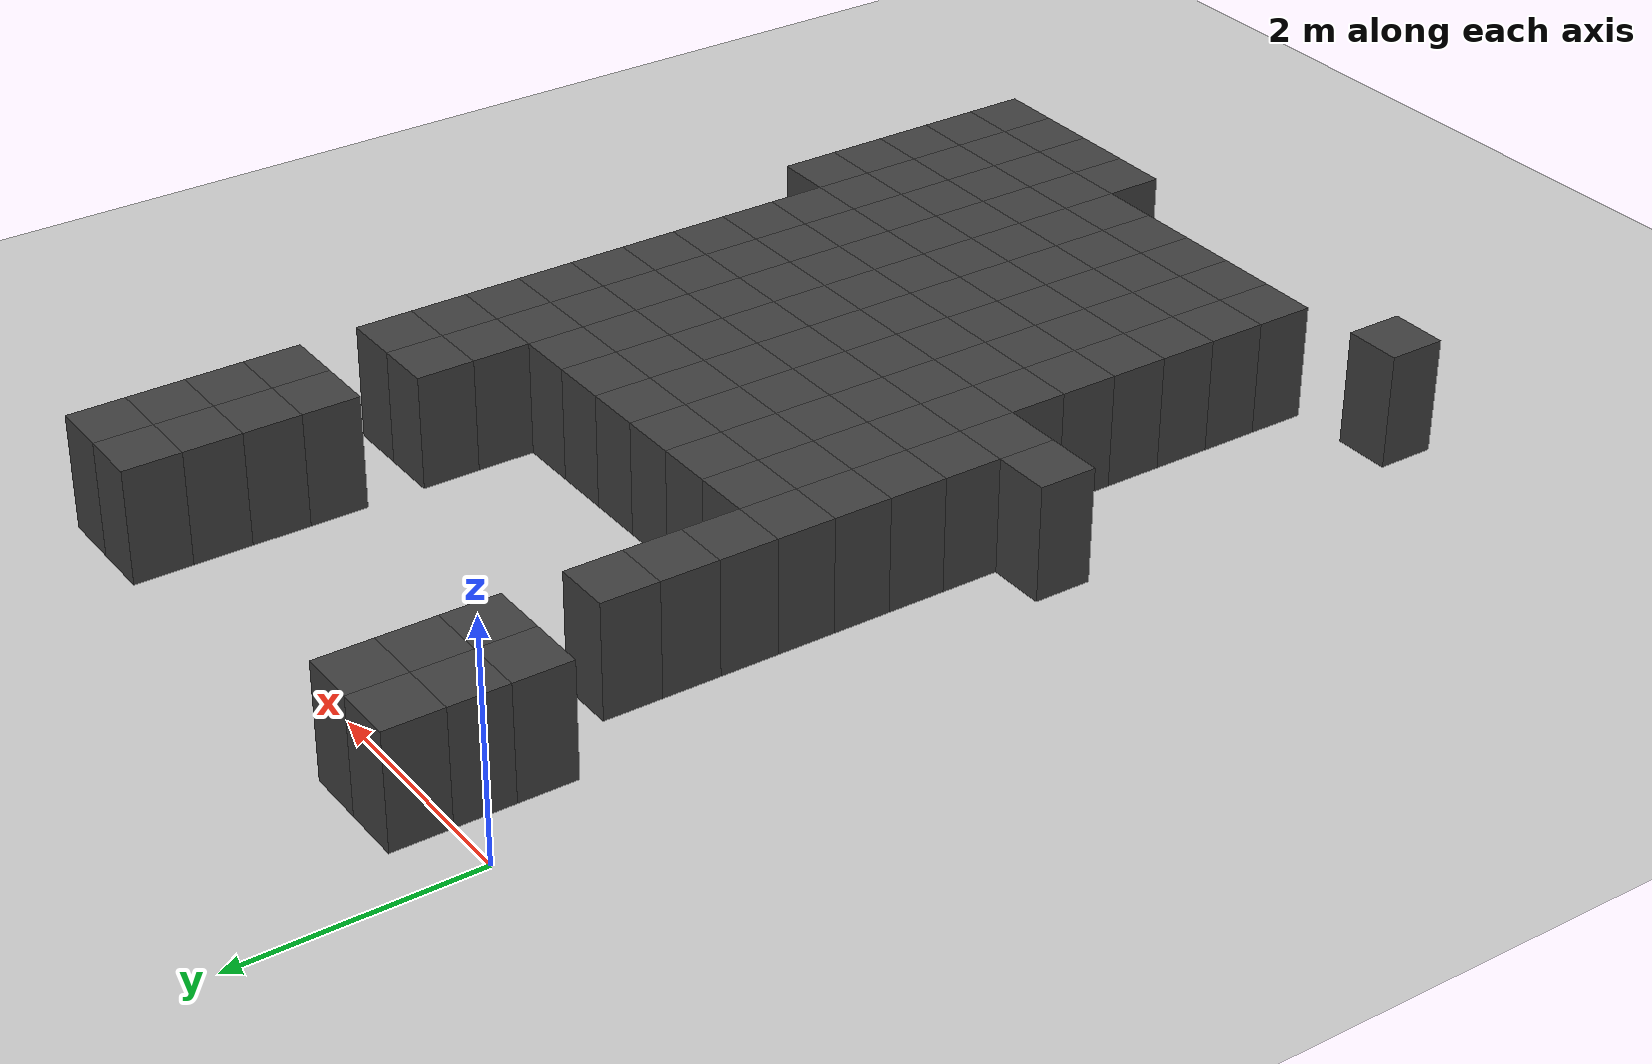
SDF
<sdf version="1.7">
 <world name="map_14802">
  <model name="ground_plane">
   <static>true</static>
   <link name="link">
    <collision name="collision">
     <geometry><plane><normal>0 0 1</normal><size>200 200</size></plane></geometry>
    </collision>
    <visual name="visual">
     <geometry><plane><normal>0 0 1</normal><size>200 200</size></plane></geometry>
     <material><ambient>0.8 0.8 0.8 1</ambient><diffuse>0.8 0.8 0.8 1</diffuse></material>
    </visual>
   </link>
  </model>
  <model name="maze_environment">
   <static>true</static>
   <link name="wall_884">
    <pose>0.750 0.250 0.500 0 0 0</pose>
    <collision name="col"><geometry><box><size>0.5 0.5 1.0</size></box></geometry></collision>
    <visual name="vis">
     <geometry><box><size>0.5 0.5 1.0</size></box></geometry>
     <material><ambient>0.15 0.15 0.15 1</ambient><diffuse>0.25 0.25 0.25 1</diffuse></material>
    </visual>
   </link>
   <link name="wall_885">
    <pose>1.250 0.250 0.500 0 0 0</pose>
    <collision name="col"><geometry><box><size>0.5 0.5 1.0</size></box></geometry></collision>
    <visual name="vis">
     <geometry><box><size>0.5 0.5 1.0</size></box></geometry>
     <material><ambient>0.15 0.15 0.15 1</ambient><diffuse>0.25 0.25 0.25 1</diffuse></material>
    </visual>
   </link>
   <link name="wall_886">
    <pose>4.750 0.250 0.500 0 0 0</pose>
    <collision name="col"><geometry><box><size>0.5 0.5 1.0</size></box></geometry></collision>
    <visual name="vis">
     <geometry><box><size>0.5 0.5 1.0</size></box></geometry>
     <material><ambient>0.15 0.15 0.15 1</ambient><diffuse>0.25 0.25 0.25 1</diffuse></material>
    </visual>
   </link>
   <link name="wall_887">
    <pose>5.250 0.250 0.500 0 0 0</pose>
    <collision name="col"><geometry><box><size>0.5 0.5 1.0</size></box></geometry></collision>
    <visual name="vis">
     <geometry><box><size>0.5 0.5 1.0</size></box></geometry>
     <material><ambient>0.15 0.15 0.15 1</ambient><diffuse>0.25 0.25 0.25 1</diffuse></material>
    </visual>
   </link>
   <link name="wall_922">
    <pose>0.750 -0.250 0.500 0 0 0</pose>
    <collision name="col"><geometry><box><size>0.5 0.5 1.0</size></box></geometry></collision>
    <visual name="vis">
     <geometry><box><size>0.5 0.5 1.0</size></box></geometry>
     <material><ambient>0.15 0.15 0.15 1</ambient><diffuse>0.25 0.25 0.25 1</diffuse></material>
    </visual>
   </link>
   <link name="wall_923">
    <pose>1.250 -0.250 0.500 0 0 0</pose>
    <collision name="col"><geometry><box><size>0.5 0.5 1.0</size></box></geometry></collision>
    <visual name="vis">
     <geometry><box><size>0.5 0.5 1.0</size></box></geometry>
     <material><ambient>0.15 0.15 0.15 1</ambient><diffuse>0.25 0.25 0.25 1</diffuse></material>
    </visual>
   </link>
   <link name="wall_924">
    <pose>4.750 -0.250 0.500 0 0 0</pose>
    <collision name="col"><geometry><box><size>0.5 0.5 1.0</size></box></geometry></collision>
    <visual name="vis">
     <geometry><box><size>0.5 0.5 1.0</size></box></geometry>
     <material><ambient>0.15 0.15 0.15 1</ambient><diffuse>0.25 0.25 0.25 1</diffuse></material>
    </visual>
   </link>
   <link name="wall_925">
    <pose>5.250 -0.250 0.500 0 0 0</pose>
    <collision name="col"><geometry><box><size>0.5 0.5 1.0</size></box></geometry></collision>
    <visual name="vis">
     <geometry><box><size>0.5 0.5 1.0</size></box></geometry>
     <material><ambient>0.15 0.15 0.15 1</ambient><diffuse>0.25 0.25 0.25 1</diffuse></material>
    </visual>
   </link>
   <link name="wall_960">
    <pose>0.750 -0.750 0.500 0 0 0</pose>
    <collision name="col"><geometry><box><size>0.5 0.5 1.0</size></box></geometry></collision>
    <visual name="vis">
     <geometry><box><size>0.5 0.5 1.0</size></box></geometry>
     <material><ambient>0.15 0.15 0.15 1</ambient><diffuse>0.25 0.25 0.25 1</diffuse></material>
    </visual>
   </link>
   <link name="wall_961">
    <pose>1.250 -0.750 0.500 0 0 0</pose>
    <collision name="col"><geometry><box><size>0.5 0.5 1.0</size></box></geometry></collision>
    <visual name="vis">
     <geometry><box><size>0.5 0.5 1.0</size></box></geometry>
     <material><ambient>0.15 0.15 0.15 1</ambient><diffuse>0.25 0.25 0.25 1</diffuse></material>
    </visual>
   </link>
   <link name="wall_962">
    <pose>4.750 -0.750 0.500 0 0 0</pose>
    <collision name="col"><geometry><box><size>0.5 0.5 1.0</size></box></geometry></collision>
    <visual name="vis">
     <geometry><box><size>0.5 0.5 1.0</size></box></geometry>
     <material><ambient>0.15 0.15 0.15 1</ambient><diffuse>0.25 0.25 0.25 1</diffuse></material>
    </visual>
   </link>
   <link name="wall_963">
    <pose>5.250 -0.750 0.500 0 0 0</pose>
    <collision name="col"><geometry><box><size>0.5 0.5 1.0</size></box></geometry></collision>
    <visual name="vis">
     <geometry><box><size>0.5 0.5 1.0</size></box></geometry>
     <material><ambient>0.15 0.15 0.15 1</ambient><diffuse>0.25 0.25 0.25 1</diffuse></material>
    </visual>
   </link>
   <link name="wall_986">
    <pose>4.750 -1.250 0.500 0 0 0</pose>
    <collision name="col"><geometry><box><size>0.5 0.5 1.0</size></box></geometry></collision>
    <visual name="vis">
     <geometry><box><size>0.5 0.5 1.0</size></box></geometry>
     <material><ambient>0.15 0.15 0.15 1</ambient><diffuse>0.25 0.25 0.25 1</diffuse></material>
    </visual>
   </link>
   <link name="wall_987">
    <pose>5.250 -1.250 0.500 0 0 0</pose>
    <collision name="col"><geometry><box><size>0.5 0.5 1.0</size></box></geometry></collision>
    <visual name="vis">
     <geometry><box><size>0.5 0.5 1.0</size></box></geometry>
     <material><ambient>0.15 0.15 0.15 1</ambient><diffuse>0.25 0.25 0.25 1</diffuse></material>
    </visual>
   </link>
   <link name="wall_1010">
    <pose>1.250 -1.750 0.500 0 0 0</pose>
    <collision name="col"><geometry><box><size>0.5 0.5 1.0</size></box></geometry></collision>
    <visual name="vis">
     <geometry><box><size>0.5 0.5 1.0</size></box></geometry>
     <material><ambient>0.15 0.15 0.15 1</ambient><diffuse>0.25 0.25 0.25 1</diffuse></material>
    </visual>
   </link>
   <link name="wall_1032">
    <pose>1.250 -2.250 0.500 0 0 0</pose>
    <collision name="col"><geometry><box><size>0.5 0.5 1.0</size></box></geometry></collision>
    <visual name="vis">
     <geometry><box><size>0.5 0.5 1.0</size></box></geometry>
     <material><ambient>0.15 0.15 0.15 1</ambient><diffuse>0.25 0.25 0.25 1</diffuse></material>
    </visual>
   </link>
   <link name="wall_1033">
    <pose>4.750 -2.250 0.500 0 0 0</pose>
    <collision name="col"><geometry><box><size>0.5 0.5 1.0</size></box></geometry></collision>
    <visual name="vis">
     <geometry><box><size>0.5 0.5 1.0</size></box></geometry>
     <material><ambient>0.15 0.15 0.15 1</ambient><diffuse>0.25 0.25 0.25 1</diffuse></material>
    </visual>
   </link>
   <link name="wall_1034">
    <pose>5.250 -2.250 0.500 0 0 0</pose>
    <collision name="col"><geometry><box><size>0.5 0.5 1.0</size></box></geometry></collision>
    <visual name="vis">
     <geometry><box><size>0.5 0.5 1.0</size></box></geometry>
     <material><ambient>0.15 0.15 0.15 1</ambient><diffuse>0.25 0.25 0.25 1</diffuse></material>
    </visual>
   </link>
   <link name="wall_1057">
    <pose>1.250 -2.750 0.500 0 0 0</pose>
    <collision name="col"><geometry><box><size>0.5 0.5 1.0</size></box></geometry></collision>
    <visual name="vis">
     <geometry><box><size>0.5 0.5 1.0</size></box></geometry>
     <material><ambient>0.15 0.15 0.15 1</ambient><diffuse>0.25 0.25 0.25 1</diffuse></material>
    </visual>
   </link>
   <link name="wall_1058">
    <pose>4.750 -2.750 0.500 0 0 0</pose>
    <collision name="col"><geometry><box><size>0.5 0.5 1.0</size></box></geometry></collision>
    <visual name="vis">
     <geometry><box><size>0.5 0.5 1.0</size></box></geometry>
     <material><ambient>0.15 0.15 0.15 1</ambient><diffuse>0.25 0.25 0.25 1</diffuse></material>
    </visual>
   </link>
   <link name="wall_1059">
    <pose>5.250 -2.750 0.500 0 0 0</pose>
    <collision name="col"><geometry><box><size>0.5 0.5 1.0</size></box></geometry></collision>
    <visual name="vis">
     <geometry><box><size>0.5 0.5 1.0</size></box></geometry>
     <material><ambient>0.15 0.15 0.15 1</ambient><diffuse>0.25 0.25 0.25 1</diffuse></material>
    </visual>
   </link>
   <link name="wall_1079">
    <pose>1.250 -3.250 0.500 0 0 0</pose>
    <collision name="col"><geometry><box><size>0.5 0.5 1.0</size></box></geometry></collision>
    <visual name="vis">
     <geometry><box><size>0.5 0.5 1.0</size></box></geometry>
     <material><ambient>0.15 0.15 0.15 1</ambient><diffuse>0.25 0.25 0.25 1</diffuse></material>
    </visual>
   </link>
   <link name="wall_1080">
    <pose>1.750 -3.250 0.500 0 0 0</pose>
    <collision name="col"><geometry><box><size>0.5 0.5 1.0</size></box></geometry></collision>
    <visual name="vis">
     <geometry><box><size>0.5 0.5 1.0</size></box></geometry>
     <material><ambient>0.15 0.15 0.15 1</ambient><diffuse>0.25 0.25 0.25 1</diffuse></material>
    </visual>
   </link>
   <link name="wall_1081">
    <pose>2.250 -3.250 0.500 0 0 0</pose>
    <collision name="col"><geometry><box><size>0.5 0.5 1.0</size></box></geometry></collision>
    <visual name="vis">
     <geometry><box><size>0.5 0.5 1.0</size></box></geometry>
     <material><ambient>0.15 0.15 0.15 1</ambient><diffuse>0.25 0.25 0.25 1</diffuse></material>
    </visual>
   </link>
   <link name="wall_1082">
    <pose>2.750 -3.250 0.500 0 0 0</pose>
    <collision name="col"><geometry><box><size>0.5 0.5 1.0</size></box></geometry></collision>
    <visual name="vis">
     <geometry><box><size>0.5 0.5 1.0</size></box></geometry>
     <material><ambient>0.15 0.15 0.15 1</ambient><diffuse>0.25 0.25 0.25 1</diffuse></material>
    </visual>
   </link>
   <link name="wall_1083">
    <pose>3.250 -3.250 0.500 0 0 0</pose>
    <collision name="col"><geometry><box><size>0.5 0.5 1.0</size></box></geometry></collision>
    <visual name="vis">
     <geometry><box><size>0.5 0.5 1.0</size></box></geometry>
     <material><ambient>0.15 0.15 0.15 1</ambient><diffuse>0.25 0.25 0.25 1</diffuse></material>
    </visual>
   </link>
   <link name="wall_1084">
    <pose>3.750 -3.250 0.500 0 0 0</pose>
    <collision name="col"><geometry><box><size>0.5 0.5 1.0</size></box></geometry></collision>
    <visual name="vis">
     <geometry><box><size>0.5 0.5 1.0</size></box></geometry>
     <material><ambient>0.15 0.15 0.15 1</ambient><diffuse>0.25 0.25 0.25 1</diffuse></material>
    </visual>
   </link>
   <link name="wall_1085">
    <pose>4.250 -3.250 0.500 0 0 0</pose>
    <collision name="col"><geometry><box><size>0.5 0.5 1.0</size></box></geometry></collision>
    <visual name="vis">
     <geometry><box><size>0.5 0.5 1.0</size></box></geometry>
     <material><ambient>0.15 0.15 0.15 1</ambient><diffuse>0.25 0.25 0.25 1</diffuse></material>
    </visual>
   </link>
   <link name="wall_1086">
    <pose>4.750 -3.250 0.500 0 0 0</pose>
    <collision name="col"><geometry><box><size>0.5 0.5 1.0</size></box></geometry></collision>
    <visual name="vis">
     <geometry><box><size>0.5 0.5 1.0</size></box></geometry>
     <material><ambient>0.15 0.15 0.15 1</ambient><diffuse>0.25 0.25 0.25 1</diffuse></material>
    </visual>
   </link>
   <link name="wall_1087">
    <pose>5.250 -3.250 0.500 0 0 0</pose>
    <collision name="col"><geometry><box><size>0.5 0.5 1.0</size></box></geometry></collision>
    <visual name="vis">
     <geometry><box><size>0.5 0.5 1.0</size></box></geometry>
     <material><ambient>0.15 0.15 0.15 1</ambient><diffuse>0.25 0.25 0.25 1</diffuse></material>
    </visual>
   </link>
   <link name="wall_1103">
    <pose>1.250 -3.750 0.500 0 0 0</pose>
    <collision name="col"><geometry><box><size>0.5 0.5 1.0</size></box></geometry></collision>
    <visual name="vis">
     <geometry><box><size>0.5 0.5 1.0</size></box></geometry>
     <material><ambient>0.15 0.15 0.15 1</ambient><diffuse>0.25 0.25 0.25 1</diffuse></material>
    </visual>
   </link>
   <link name="wall_1104">
    <pose>1.750 -3.750 0.500 0 0 0</pose>
    <collision name="col"><geometry><box><size>0.5 0.5 1.0</size></box></geometry></collision>
    <visual name="vis">
     <geometry><box><size>0.5 0.5 1.0</size></box></geometry>
     <material><ambient>0.15 0.15 0.15 1</ambient><diffuse>0.25 0.25 0.25 1</diffuse></material>
    </visual>
   </link>
   <link name="wall_1105">
    <pose>2.250 -3.750 0.500 0 0 0</pose>
    <collision name="col"><geometry><box><size>0.5 0.5 1.0</size></box></geometry></collision>
    <visual name="vis">
     <geometry><box><size>0.5 0.5 1.0</size></box></geometry>
     <material><ambient>0.15 0.15 0.15 1</ambient><diffuse>0.25 0.25 0.25 1</diffuse></material>
    </visual>
   </link>
   <link name="wall_1106">
    <pose>2.750 -3.750 0.500 0 0 0</pose>
    <collision name="col"><geometry><box><size>0.5 0.5 1.0</size></box></geometry></collision>
    <visual name="vis">
     <geometry><box><size>0.5 0.5 1.0</size></box></geometry>
     <material><ambient>0.15 0.15 0.15 1</ambient><diffuse>0.25 0.25 0.25 1</diffuse></material>
    </visual>
   </link>
   <link name="wall_1107">
    <pose>3.250 -3.750 0.500 0 0 0</pose>
    <collision name="col"><geometry><box><size>0.5 0.5 1.0</size></box></geometry></collision>
    <visual name="vis">
     <geometry><box><size>0.5 0.5 1.0</size></box></geometry>
     <material><ambient>0.15 0.15 0.15 1</ambient><diffuse>0.25 0.25 0.25 1</diffuse></material>
    </visual>
   </link>
   <link name="wall_1108">
    <pose>3.750 -3.750 0.500 0 0 0</pose>
    <collision name="col"><geometry><box><size>0.5 0.5 1.0</size></box></geometry></collision>
    <visual name="vis">
     <geometry><box><size>0.5 0.5 1.0</size></box></geometry>
     <material><ambient>0.15 0.15 0.15 1</ambient><diffuse>0.25 0.25 0.25 1</diffuse></material>
    </visual>
   </link>
   <link name="wall_1109">
    <pose>4.250 -3.750 0.500 0 0 0</pose>
    <collision name="col"><geometry><box><size>0.5 0.5 1.0</size></box></geometry></collision>
    <visual name="vis">
     <geometry><box><size>0.5 0.5 1.0</size></box></geometry>
     <material><ambient>0.15 0.15 0.15 1</ambient><diffuse>0.25 0.25 0.25 1</diffuse></material>
    </visual>
   </link>
   <link name="wall_1110">
    <pose>4.750 -3.750 0.500 0 0 0</pose>
    <collision name="col"><geometry><box><size>0.5 0.5 1.0</size></box></geometry></collision>
    <visual name="vis">
     <geometry><box><size>0.5 0.5 1.0</size></box></geometry>
     <material><ambient>0.15 0.15 0.15 1</ambient><diffuse>0.25 0.25 0.25 1</diffuse></material>
    </visual>
   </link>
   <link name="wall_1111">
    <pose>5.250 -3.750 0.500 0 0 0</pose>
    <collision name="col"><geometry><box><size>0.5 0.5 1.0</size></box></geometry></collision>
    <visual name="vis">
     <geometry><box><size>0.5 0.5 1.0</size></box></geometry>
     <material><ambient>0.15 0.15 0.15 1</ambient><diffuse>0.25 0.25 0.25 1</diffuse></material>
    </visual>
   </link>
   <link name="wall_1127">
    <pose>1.250 -4.250 0.500 0 0 0</pose>
    <collision name="col"><geometry><box><size>0.5 0.5 1.0</size></box></geometry></collision>
    <visual name="vis">
     <geometry><box><size>0.5 0.5 1.0</size></box></geometry>
     <material><ambient>0.15 0.15 0.15 1</ambient><diffuse>0.25 0.25 0.25 1</diffuse></material>
    </visual>
   </link>
   <link name="wall_1128">
    <pose>1.750 -4.250 0.500 0 0 0</pose>
    <collision name="col"><geometry><box><size>0.5 0.5 1.0</size></box></geometry></collision>
    <visual name="vis">
     <geometry><box><size>0.5 0.5 1.0</size></box></geometry>
     <material><ambient>0.15 0.15 0.15 1</ambient><diffuse>0.25 0.25 0.25 1</diffuse></material>
    </visual>
   </link>
   <link name="wall_1129">
    <pose>2.250 -4.250 0.500 0 0 0</pose>
    <collision name="col"><geometry><box><size>0.5 0.5 1.0</size></box></geometry></collision>
    <visual name="vis">
     <geometry><box><size>0.5 0.5 1.0</size></box></geometry>
     <material><ambient>0.15 0.15 0.15 1</ambient><diffuse>0.25 0.25 0.25 1</diffuse></material>
    </visual>
   </link>
   <link name="wall_1130">
    <pose>2.750 -4.250 0.500 0 0 0</pose>
    <collision name="col"><geometry><box><size>0.5 0.5 1.0</size></box></geometry></collision>
    <visual name="vis">
     <geometry><box><size>0.5 0.5 1.0</size></box></geometry>
     <material><ambient>0.15 0.15 0.15 1</ambient><diffuse>0.25 0.25 0.25 1</diffuse></material>
    </visual>
   </link>
   <link name="wall_1131">
    <pose>3.250 -4.250 0.500 0 0 0</pose>
    <collision name="col"><geometry><box><size>0.5 0.5 1.0</size></box></geometry></collision>
    <visual name="vis">
     <geometry><box><size>0.5 0.5 1.0</size></box></geometry>
     <material><ambient>0.15 0.15 0.15 1</ambient><diffuse>0.25 0.25 0.25 1</diffuse></material>
    </visual>
   </link>
   <link name="wall_1132">
    <pose>3.750 -4.250 0.500 0 0 0</pose>
    <collision name="col"><geometry><box><size>0.5 0.5 1.0</size></box></geometry></collision>
    <visual name="vis">
     <geometry><box><size>0.5 0.5 1.0</size></box></geometry>
     <material><ambient>0.15 0.15 0.15 1</ambient><diffuse>0.25 0.25 0.25 1</diffuse></material>
    </visual>
   </link>
   <link name="wall_1133">
    <pose>4.250 -4.250 0.500 0 0 0</pose>
    <collision name="col"><geometry><box><size>0.5 0.5 1.0</size></box></geometry></collision>
    <visual name="vis">
     <geometry><box><size>0.5 0.5 1.0</size></box></geometry>
     <material><ambient>0.15 0.15 0.15 1</ambient><diffuse>0.25 0.25 0.25 1</diffuse></material>
    </visual>
   </link>
   <link name="wall_1134">
    <pose>4.750 -4.250 0.500 0 0 0</pose>
    <collision name="col"><geometry><box><size>0.5 0.5 1.0</size></box></geometry></collision>
    <visual name="vis">
     <geometry><box><size>0.5 0.5 1.0</size></box></geometry>
     <material><ambient>0.15 0.15 0.15 1</ambient><diffuse>0.25 0.25 0.25 1</diffuse></material>
    </visual>
   </link>
   <link name="wall_1135">
    <pose>5.250 -4.250 0.500 0 0 0</pose>
    <collision name="col"><geometry><box><size>0.5 0.5 1.0</size></box></geometry></collision>
    <visual name="vis">
     <geometry><box><size>0.5 0.5 1.0</size></box></geometry>
     <material><ambient>0.15 0.15 0.15 1</ambient><diffuse>0.25 0.25 0.25 1</diffuse></material>
    </visual>
   </link>
   <link name="wall_1144">
    <pose>1.250 -4.750 0.500 0 0 0</pose>
    <collision name="col"><geometry><box><size>0.5 0.5 1.0</size></box></geometry></collision>
    <visual name="vis">
     <geometry><box><size>0.5 0.5 1.0</size></box></geometry>
     <material><ambient>0.15 0.15 0.15 1</ambient><diffuse>0.25 0.25 0.25 1</diffuse></material>
    </visual>
   </link>
   <link name="wall_1145">
    <pose>1.750 -4.750 0.500 0 0 0</pose>
    <collision name="col"><geometry><box><size>0.5 0.5 1.0</size></box></geometry></collision>
    <visual name="vis">
     <geometry><box><size>0.5 0.5 1.0</size></box></geometry>
     <material><ambient>0.15 0.15 0.15 1</ambient><diffuse>0.25 0.25 0.25 1</diffuse></material>
    </visual>
   </link>
   <link name="wall_1146">
    <pose>2.250 -4.750 0.500 0 0 0</pose>
    <collision name="col"><geometry><box><size>0.5 0.5 1.0</size></box></geometry></collision>
    <visual name="vis">
     <geometry><box><size>0.5 0.5 1.0</size></box></geometry>
     <material><ambient>0.15 0.15 0.15 1</ambient><diffuse>0.25 0.25 0.25 1</diffuse></material>
    </visual>
   </link>
   <link name="wall_1147">
    <pose>2.750 -4.750 0.500 0 0 0</pose>
    <collision name="col"><geometry><box><size>0.5 0.5 1.0</size></box></geometry></collision>
    <visual name="vis">
     <geometry><box><size>0.5 0.5 1.0</size></box></geometry>
     <material><ambient>0.15 0.15 0.15 1</ambient><diffuse>0.25 0.25 0.25 1</diffuse></material>
    </visual>
   </link>
   <link name="wall_1148">
    <pose>3.250 -4.750 0.500 0 0 0</pose>
    <collision name="col"><geometry><box><size>0.5 0.5 1.0</size></box></geometry></collision>
    <visual name="vis">
     <geometry><box><size>0.5 0.5 1.0</size></box></geometry>
     <material><ambient>0.15 0.15 0.15 1</ambient><diffuse>0.25 0.25 0.25 1</diffuse></material>
    </visual>
   </link>
   <link name="wall_1149">
    <pose>3.750 -4.750 0.500 0 0 0</pose>
    <collision name="col"><geometry><box><size>0.5 0.5 1.0</size></box></geometry></collision>
    <visual name="vis">
     <geometry><box><size>0.5 0.5 1.0</size></box></geometry>
     <material><ambient>0.15 0.15 0.15 1</ambient><diffuse>0.25 0.25 0.25 1</diffuse></material>
    </visual>
   </link>
   <link name="wall_1150">
    <pose>4.250 -4.750 0.500 0 0 0</pose>
    <collision name="col"><geometry><box><size>0.5 0.5 1.0</size></box></geometry></collision>
    <visual name="vis">
     <geometry><box><size>0.5 0.5 1.0</size></box></geometry>
     <material><ambient>0.15 0.15 0.15 1</ambient><diffuse>0.25 0.25 0.25 1</diffuse></material>
    </visual>
   </link>
   <link name="wall_1151">
    <pose>4.750 -4.750 0.500 0 0 0</pose>
    <collision name="col"><geometry><box><size>0.5 0.5 1.0</size></box></geometry></collision>
    <visual name="vis">
     <geometry><box><size>0.5 0.5 1.0</size></box></geometry>
     <material><ambient>0.15 0.15 0.15 1</ambient><diffuse>0.25 0.25 0.25 1</diffuse></material>
    </visual>
   </link>
   <link name="wall_1152">
    <pose>5.250 -4.750 0.500 0 0 0</pose>
    <collision name="col"><geometry><box><size>0.5 0.5 1.0</size></box></geometry></collision>
    <visual name="vis">
     <geometry><box><size>0.5 0.5 1.0</size></box></geometry>
     <material><ambient>0.15 0.15 0.15 1</ambient><diffuse>0.25 0.25 0.25 1</diffuse></material>
    </visual>
   </link>
   <link name="wall_1171">
    <pose>0.750 -5.250 0.500 0 0 0</pose>
    <collision name="col"><geometry><box><size>0.5 0.5 1.0</size></box></geometry></collision>
    <visual name="vis">
     <geometry><box><size>0.5 0.5 1.0</size></box></geometry>
     <material><ambient>0.15 0.15 0.15 1</ambient><diffuse>0.25 0.25 0.25 1</diffuse></material>
    </visual>
   </link>
   <link name="wall_1172">
    <pose>1.250 -5.250 0.500 0 0 0</pose>
    <collision name="col"><geometry><box><size>0.5 0.5 1.0</size></box></geometry></collision>
    <visual name="vis">
     <geometry><box><size>0.5 0.5 1.0</size></box></geometry>
     <material><ambient>0.15 0.15 0.15 1</ambient><diffuse>0.25 0.25 0.25 1</diffuse></material>
    </visual>
   </link>
   <link name="wall_1173">
    <pose>1.750 -5.250 0.500 0 0 0</pose>
    <collision name="col"><geometry><box><size>0.5 0.5 1.0</size></box></geometry></collision>
    <visual name="vis">
     <geometry><box><size>0.5 0.5 1.0</size></box></geometry>
     <material><ambient>0.15 0.15 0.15 1</ambient><diffuse>0.25 0.25 0.25 1</diffuse></material>
    </visual>
   </link>
   <link name="wall_1174">
    <pose>2.250 -5.250 0.500 0 0 0</pose>
    <collision name="col"><geometry><box><size>0.5 0.5 1.0</size></box></geometry></collision>
    <visual name="vis">
     <geometry><box><size>0.5 0.5 1.0</size></box></geometry>
     <material><ambient>0.15 0.15 0.15 1</ambient><diffuse>0.25 0.25 0.25 1</diffuse></material>
    </visual>
   </link>
   <link name="wall_1175">
    <pose>2.750 -5.250 0.500 0 0 0</pose>
    <collision name="col"><geometry><box><size>0.5 0.5 1.0</size></box></geometry></collision>
    <visual name="vis">
     <geometry><box><size>0.5 0.5 1.0</size></box></geometry>
     <material><ambient>0.15 0.15 0.15 1</ambient><diffuse>0.25 0.25 0.25 1</diffuse></material>
    </visual>
   </link>
   <link name="wall_1176">
    <pose>3.250 -5.250 0.500 0 0 0</pose>
    <collision name="col"><geometry><box><size>0.5 0.5 1.0</size></box></geometry></collision>
    <visual name="vis">
     <geometry><box><size>0.5 0.5 1.0</size></box></geometry>
     <material><ambient>0.15 0.15 0.15 1</ambient><diffuse>0.25 0.25 0.25 1</diffuse></material>
    </visual>
   </link>
   <link name="wall_1177">
    <pose>3.750 -5.250 0.500 0 0 0</pose>
    <collision name="col"><geometry><box><size>0.5 0.5 1.0</size></box></geometry></collision>
    <visual name="vis">
     <geometry><box><size>0.5 0.5 1.0</size></box></geometry>
     <material><ambient>0.15 0.15 0.15 1</ambient><diffuse>0.25 0.25 0.25 1</diffuse></material>
    </visual>
   </link>
   <link name="wall_1178">
    <pose>4.250 -5.250 0.500 0 0 0</pose>
    <collision name="col"><geometry><box><size>0.5 0.5 1.0</size></box></geometry></collision>
    <visual name="vis">
     <geometry><box><size>0.5 0.5 1.0</size></box></geometry>
     <material><ambient>0.15 0.15 0.15 1</ambient><diffuse>0.25 0.25 0.25 1</diffuse></material>
    </visual>
   </link>
   <link name="wall_1179">
    <pose>4.750 -5.250 0.500 0 0 0</pose>
    <collision name="col"><geometry><box><size>0.5 0.5 1.0</size></box></geometry></collision>
    <visual name="vis">
     <geometry><box><size>0.5 0.5 1.0</size></box></geometry>
     <material><ambient>0.15 0.15 0.15 1</ambient><diffuse>0.25 0.25 0.25 1</diffuse></material>
    </visual>
   </link>
   <link name="wall_1180">
    <pose>5.250 -5.250 0.500 0 0 0</pose>
    <collision name="col"><geometry><box><size>0.5 0.5 1.0</size></box></geometry></collision>
    <visual name="vis">
     <geometry><box><size>0.5 0.5 1.0</size></box></geometry>
     <material><ambient>0.15 0.15 0.15 1</ambient><diffuse>0.25 0.25 0.25 1</diffuse></material>
    </visual>
   </link>
   <link name="wall_1194">
    <pose>1.750 -5.750 0.500 0 0 0</pose>
    <collision name="col"><geometry><box><size>0.5 0.5 1.0</size></box></geometry></collision>
    <visual name="vis">
     <geometry><box><size>0.5 0.5 1.0</size></box></geometry>
     <material><ambient>0.15 0.15 0.15 1</ambient><diffuse>0.25 0.25 0.25 1</diffuse></material>
    </visual>
   </link>
   <link name="wall_1195">
    <pose>2.250 -5.750 0.500 0 0 0</pose>
    <collision name="col"><geometry><box><size>0.5 0.5 1.0</size></box></geometry></collision>
    <visual name="vis">
     <geometry><box><size>0.5 0.5 1.0</size></box></geometry>
     <material><ambient>0.15 0.15 0.15 1</ambient><diffuse>0.25 0.25 0.25 1</diffuse></material>
    </visual>
   </link>
   <link name="wall_1196">
    <pose>2.750 -5.750 0.500 0 0 0</pose>
    <collision name="col"><geometry><box><size>0.5 0.5 1.0</size></box></geometry></collision>
    <visual name="vis">
     <geometry><box><size>0.5 0.5 1.0</size></box></geometry>
     <material><ambient>0.15 0.15 0.15 1</ambient><diffuse>0.25 0.25 0.25 1</diffuse></material>
    </visual>
   </link>
   <link name="wall_1197">
    <pose>3.250 -5.750 0.500 0 0 0</pose>
    <collision name="col"><geometry><box><size>0.5 0.5 1.0</size></box></geometry></collision>
    <visual name="vis">
     <geometry><box><size>0.5 0.5 1.0</size></box></geometry>
     <material><ambient>0.15 0.15 0.15 1</ambient><diffuse>0.25 0.25 0.25 1</diffuse></material>
    </visual>
   </link>
   <link name="wall_1198">
    <pose>3.750 -5.750 0.500 0 0 0</pose>
    <collision name="col"><geometry><box><size>0.5 0.5 1.0</size></box></geometry></collision>
    <visual name="vis">
     <geometry><box><size>0.5 0.5 1.0</size></box></geometry>
     <material><ambient>0.15 0.15 0.15 1</ambient><diffuse>0.25 0.25 0.25 1</diffuse></material>
    </visual>
   </link>
   <link name="wall_1199">
    <pose>4.250 -5.750 0.500 0 0 0</pose>
    <collision name="col"><geometry><box><size>0.5 0.5 1.0</size></box></geometry></collision>
    <visual name="vis">
     <geometry><box><size>0.5 0.5 1.0</size></box></geometry>
     <material><ambient>0.15 0.15 0.15 1</ambient><diffuse>0.25 0.25 0.25 1</diffuse></material>
    </visual>
   </link>
   <link name="wall_1200">
    <pose>4.750 -5.750 0.500 0 0 0</pose>
    <collision name="col"><geometry><box><size>0.5 0.5 1.0</size></box></geometry></collision>
    <visual name="vis">
     <geometry><box><size>0.5 0.5 1.0</size></box></geometry>
     <material><ambient>0.15 0.15 0.15 1</ambient><diffuse>0.25 0.25 0.25 1</diffuse></material>
    </visual>
   </link>
   <link name="wall_1201">
    <pose>5.250 -5.750 0.500 0 0 0</pose>
    <collision name="col"><geometry><box><size>0.5 0.5 1.0</size></box></geometry></collision>
    <visual name="vis">
     <geometry><box><size>0.5 0.5 1.0</size></box></geometry>
     <material><ambient>0.15 0.15 0.15 1</ambient><diffuse>0.25 0.25 0.25 1</diffuse></material>
    </visual>
   </link>
   <link name="wall_1227">
    <pose>1.750 -6.250 0.500 0 0 0</pose>
    <collision name="col"><geometry><box><size>0.5 0.5 1.0</size></box></geometry></collision>
    <visual name="vis">
     <geometry><box><size>0.5 0.5 1.0</size></box></geometry>
     <material><ambient>0.15 0.15 0.15 1</ambient><diffuse>0.25 0.25 0.25 1</diffuse></material>
    </visual>
   </link>
   <link name="wall_1228">
    <pose>2.250 -6.250 0.500 0 0 0</pose>
    <collision name="col"><geometry><box><size>0.5 0.5 1.0</size></box></geometry></collision>
    <visual name="vis">
     <geometry><box><size>0.5 0.5 1.0</size></box></geometry>
     <material><ambient>0.15 0.15 0.15 1</ambient><diffuse>0.25 0.25 0.25 1</diffuse></material>
    </visual>
   </link>
   <link name="wall_1229">
    <pose>2.750 -6.250 0.500 0 0 0</pose>
    <collision name="col"><geometry><box><size>0.5 0.5 1.0</size></box></geometry></collision>
    <visual name="vis">
     <geometry><box><size>0.5 0.5 1.0</size></box></geometry>
     <material><ambient>0.15 0.15 0.15 1</ambient><diffuse>0.25 0.25 0.25 1</diffuse></material>
    </visual>
   </link>
   <link name="wall_1230">
    <pose>3.250 -6.250 0.500 0 0 0</pose>
    <collision name="col"><geometry><box><size>0.5 0.5 1.0</size></box></geometry></collision>
    <visual name="vis">
     <geometry><box><size>0.5 0.5 1.0</size></box></geometry>
     <material><ambient>0.15 0.15 0.15 1</ambient><diffuse>0.25 0.25 0.25 1</diffuse></material>
    </visual>
   </link>
   <link name="wall_1231">
    <pose>3.750 -6.250 0.500 0 0 0</pose>
    <collision name="col"><geometry><box><size>0.5 0.5 1.0</size></box></geometry></collision>
    <visual name="vis">
     <geometry><box><size>0.5 0.5 1.0</size></box></geometry>
     <material><ambient>0.15 0.15 0.15 1</ambient><diffuse>0.25 0.25 0.25 1</diffuse></material>
    </visual>
   </link>
   <link name="wall_1232">
    <pose>4.250 -6.250 0.500 0 0 0</pose>
    <collision name="col"><geometry><box><size>0.5 0.5 1.0</size></box></geometry></collision>
    <visual name="vis">
     <geometry><box><size>0.5 0.5 1.0</size></box></geometry>
     <material><ambient>0.15 0.15 0.15 1</ambient><diffuse>0.25 0.25 0.25 1</diffuse></material>
    </visual>
   </link>
   <link name="wall_1233">
    <pose>4.750 -6.250 0.500 0 0 0</pose>
    <collision name="col"><geometry><box><size>0.5 0.5 1.0</size></box></geometry></collision>
    <visual name="vis">
     <geometry><box><size>0.5 0.5 1.0</size></box></geometry>
     <material><ambient>0.15 0.15 0.15 1</ambient><diffuse>0.25 0.25 0.25 1</diffuse></material>
    </visual>
   </link>
   <link name="wall_1234">
    <pose>5.250 -6.250 0.500 0 0 0</pose>
    <collision name="col"><geometry><box><size>0.5 0.5 1.0</size></box></geometry></collision>
    <visual name="vis">
     <geometry><box><size>0.5 0.5 1.0</size></box></geometry>
     <material><ambient>0.15 0.15 0.15 1</ambient><diffuse>0.25 0.25 0.25 1</diffuse></material>
    </visual>
   </link>
   <link name="wall_1260">
    <pose>1.750 -6.750 0.500 0 0 0</pose>
    <collision name="col"><geometry><box><size>0.5 0.5 1.0</size></box></geometry></collision>
    <visual name="vis">
     <geometry><box><size>0.5 0.5 1.0</size></box></geometry>
     <material><ambient>0.15 0.15 0.15 1</ambient><diffuse>0.25 0.25 0.25 1</diffuse></material>
    </visual>
   </link>
   <link name="wall_1261">
    <pose>2.250 -6.750 0.500 0 0 0</pose>
    <collision name="col"><geometry><box><size>0.5 0.5 1.0</size></box></geometry></collision>
    <visual name="vis">
     <geometry><box><size>0.5 0.5 1.0</size></box></geometry>
     <material><ambient>0.15 0.15 0.15 1</ambient><diffuse>0.25 0.25 0.25 1</diffuse></material>
    </visual>
   </link>
   <link name="wall_1262">
    <pose>2.750 -6.750 0.500 0 0 0</pose>
    <collision name="col"><geometry><box><size>0.5 0.5 1.0</size></box></geometry></collision>
    <visual name="vis">
     <geometry><box><size>0.5 0.5 1.0</size></box></geometry>
     <material><ambient>0.15 0.15 0.15 1</ambient><diffuse>0.25 0.25 0.25 1</diffuse></material>
    </visual>
   </link>
   <link name="wall_1263">
    <pose>3.250 -6.750 0.500 0 0 0</pose>
    <collision name="col"><geometry><box><size>0.5 0.5 1.0</size></box></geometry></collision>
    <visual name="vis">
     <geometry><box><size>0.5 0.5 1.0</size></box></geometry>
     <material><ambient>0.15 0.15 0.15 1</ambient><diffuse>0.25 0.25 0.25 1</diffuse></material>
    </visual>
   </link>
   <link name="wall_1264">
    <pose>3.750 -6.750 0.500 0 0 0</pose>
    <collision name="col"><geometry><box><size>0.5 0.5 1.0</size></box></geometry></collision>
    <visual name="vis">
     <geometry><box><size>0.5 0.5 1.0</size></box></geometry>
     <material><ambient>0.15 0.15 0.15 1</ambient><diffuse>0.25 0.25 0.25 1</diffuse></material>
    </visual>
   </link>
   <link name="wall_1265">
    <pose>4.250 -6.750 0.500 0 0 0</pose>
    <collision name="col"><geometry><box><size>0.5 0.5 1.0</size></box></geometry></collision>
    <visual name="vis">
     <geometry><box><size>0.5 0.5 1.0</size></box></geometry>
     <material><ambient>0.15 0.15 0.15 1</ambient><diffuse>0.25 0.25 0.25 1</diffuse></material>
    </visual>
   </link>
   <link name="wall_1266">
    <pose>4.750 -6.750 0.500 0 0 0</pose>
    <collision name="col"><geometry><box><size>0.5 0.5 1.0</size></box></geometry></collision>
    <visual name="vis">
     <geometry><box><size>0.5 0.5 1.0</size></box></geometry>
     <material><ambient>0.15 0.15 0.15 1</ambient><diffuse>0.25 0.25 0.25 1</diffuse></material>
    </visual>
   </link>
   <link name="wall_1267">
    <pose>5.250 -6.750 0.500 0 0 0</pose>
    <collision name="col"><geometry><box><size>0.5 0.5 1.0</size></box></geometry></collision>
    <visual name="vis">
     <geometry><box><size>0.5 0.5 1.0</size></box></geometry>
     <material><ambient>0.15 0.15 0.15 1</ambient><diffuse>0.25 0.25 0.25 1</diffuse></material>
    </visual>
   </link>
   <link name="wall_1268">
    <pose>5.750 -6.750 0.500 0 0 0</pose>
    <collision name="col"><geometry><box><size>0.5 0.5 1.0</size></box></geometry></collision>
    <visual name="vis">
     <geometry><box><size>0.5 0.5 1.0</size></box></geometry>
     <material><ambient>0.15 0.15 0.15 1</ambient><diffuse>0.25 0.25 0.25 1</diffuse></material>
    </visual>
   </link>
   <link name="wall_1295">
    <pose>1.750 -7.250 0.500 0 0 0</pose>
    <collision name="col"><geometry><box><size>0.5 0.5 1.0</size></box></geometry></collision>
    <visual name="vis">
     <geometry><box><size>0.5 0.5 1.0</size></box></geometry>
     <material><ambient>0.15 0.15 0.15 1</ambient><diffuse>0.25 0.25 0.25 1</diffuse></material>
    </visual>
   </link>
   <link name="wall_1296">
    <pose>2.250 -7.250 0.500 0 0 0</pose>
    <collision name="col"><geometry><box><size>0.5 0.5 1.0</size></box></geometry></collision>
    <visual name="vis">
     <geometry><box><size>0.5 0.5 1.0</size></box></geometry>
     <material><ambient>0.15 0.15 0.15 1</ambient><diffuse>0.25 0.25 0.25 1</diffuse></material>
    </visual>
   </link>
   <link name="wall_1297">
    <pose>2.750 -7.250 0.500 0 0 0</pose>
    <collision name="col"><geometry><box><size>0.5 0.5 1.0</size></box></geometry></collision>
    <visual name="vis">
     <geometry><box><size>0.5 0.5 1.0</size></box></geometry>
     <material><ambient>0.15 0.15 0.15 1</ambient><diffuse>0.25 0.25 0.25 1</diffuse></material>
    </visual>
   </link>
   <link name="wall_1298">
    <pose>3.250 -7.250 0.500 0 0 0</pose>
    <collision name="col"><geometry><box><size>0.5 0.5 1.0</size></box></geometry></collision>
    <visual name="vis">
     <geometry><box><size>0.5 0.5 1.0</size></box></geometry>
     <material><ambient>0.15 0.15 0.15 1</ambient><diffuse>0.25 0.25 0.25 1</diffuse></material>
    </visual>
   </link>
   <link name="wall_1299">
    <pose>3.750 -7.250 0.500 0 0 0</pose>
    <collision name="col"><geometry><box><size>0.5 0.5 1.0</size></box></geometry></collision>
    <visual name="vis">
     <geometry><box><size>0.5 0.5 1.0</size></box></geometry>
     <material><ambient>0.15 0.15 0.15 1</ambient><diffuse>0.25 0.25 0.25 1</diffuse></material>
    </visual>
   </link>
   <link name="wall_1300">
    <pose>4.250 -7.250 0.500 0 0 0</pose>
    <collision name="col"><geometry><box><size>0.5 0.5 1.0</size></box></geometry></collision>
    <visual name="vis">
     <geometry><box><size>0.5 0.5 1.0</size></box></geometry>
     <material><ambient>0.15 0.15 0.15 1</ambient><diffuse>0.25 0.25 0.25 1</diffuse></material>
    </visual>
   </link>
   <link name="wall_1301">
    <pose>4.750 -7.250 0.500 0 0 0</pose>
    <collision name="col"><geometry><box><size>0.5 0.5 1.0</size></box></geometry></collision>
    <visual name="vis">
     <geometry><box><size>0.5 0.5 1.0</size></box></geometry>
     <material><ambient>0.15 0.15 0.15 1</ambient><diffuse>0.25 0.25 0.25 1</diffuse></material>
    </visual>
   </link>
   <link name="wall_1302">
    <pose>5.250 -7.250 0.500 0 0 0</pose>
    <collision name="col"><geometry><box><size>0.5 0.5 1.0</size></box></geometry></collision>
    <visual name="vis">
     <geometry><box><size>0.5 0.5 1.0</size></box></geometry>
     <material><ambient>0.15 0.15 0.15 1</ambient><diffuse>0.25 0.25 0.25 1</diffuse></material>
    </visual>
   </link>
   <link name="wall_1303">
    <pose>5.750 -7.250 0.500 0 0 0</pose>
    <collision name="col"><geometry><box><size>0.5 0.5 1.0</size></box></geometry></collision>
    <visual name="vis">
     <geometry><box><size>0.5 0.5 1.0</size></box></geometry>
     <material><ambient>0.15 0.15 0.15 1</ambient><diffuse>0.25 0.25 0.25 1</diffuse></material>
    </visual>
   </link>
   <link name="wall_1330">
    <pose>1.750 -7.750 0.500 0 0 0</pose>
    <collision name="col"><geometry><box><size>0.5 0.5 1.0</size></box></geometry></collision>
    <visual name="vis">
     <geometry><box><size>0.5 0.5 1.0</size></box></geometry>
     <material><ambient>0.15 0.15 0.15 1</ambient><diffuse>0.25 0.25 0.25 1</diffuse></material>
    </visual>
   </link>
   <link name="wall_1331">
    <pose>2.250 -7.750 0.500 0 0 0</pose>
    <collision name="col"><geometry><box><size>0.5 0.5 1.0</size></box></geometry></collision>
    <visual name="vis">
     <geometry><box><size>0.5 0.5 1.0</size></box></geometry>
     <material><ambient>0.15 0.15 0.15 1</ambient><diffuse>0.25 0.25 0.25 1</diffuse></material>
    </visual>
   </link>
   <link name="wall_1332">
    <pose>2.750 -7.750 0.500 0 0 0</pose>
    <collision name="col"><geometry><box><size>0.5 0.5 1.0</size></box></geometry></collision>
    <visual name="vis">
     <geometry><box><size>0.5 0.5 1.0</size></box></geometry>
     <material><ambient>0.15 0.15 0.15 1</ambient><diffuse>0.25 0.25 0.25 1</diffuse></material>
    </visual>
   </link>
   <link name="wall_1333">
    <pose>3.250 -7.750 0.500 0 0 0</pose>
    <collision name="col"><geometry><box><size>0.5 0.5 1.0</size></box></geometry></collision>
    <visual name="vis">
     <geometry><box><size>0.5 0.5 1.0</size></box></geometry>
     <material><ambient>0.15 0.15 0.15 1</ambient><diffuse>0.25 0.25 0.25 1</diffuse></material>
    </visual>
   </link>
   <link name="wall_1334">
    <pose>3.750 -7.750 0.500 0 0 0</pose>
    <collision name="col"><geometry><box><size>0.5 0.5 1.0</size></box></geometry></collision>
    <visual name="vis">
     <geometry><box><size>0.5 0.5 1.0</size></box></geometry>
     <material><ambient>0.15 0.15 0.15 1</ambient><diffuse>0.25 0.25 0.25 1</diffuse></material>
    </visual>
   </link>
   <link name="wall_1335">
    <pose>4.250 -7.750 0.500 0 0 0</pose>
    <collision name="col"><geometry><box><size>0.5 0.5 1.0</size></box></geometry></collision>
    <visual name="vis">
     <geometry><box><size>0.5 0.5 1.0</size></box></geometry>
     <material><ambient>0.15 0.15 0.15 1</ambient><diffuse>0.25 0.25 0.25 1</diffuse></material>
    </visual>
   </link>
   <link name="wall_1336">
    <pose>4.750 -7.750 0.500 0 0 0</pose>
    <collision name="col"><geometry><box><size>0.5 0.5 1.0</size></box></geometry></collision>
    <visual name="vis">
     <geometry><box><size>0.5 0.5 1.0</size></box></geometry>
     <material><ambient>0.15 0.15 0.15 1</ambient><diffuse>0.25 0.25 0.25 1</diffuse></material>
    </visual>
   </link>
   <link name="wall_1337">
    <pose>5.250 -7.750 0.500 0 0 0</pose>
    <collision name="col"><geometry><box><size>0.5 0.5 1.0</size></box></geometry></collision>
    <visual name="vis">
     <geometry><box><size>0.5 0.5 1.0</size></box></geometry>
     <material><ambient>0.15 0.15 0.15 1</ambient><diffuse>0.25 0.25 0.25 1</diffuse></material>
    </visual>
   </link>
   <link name="wall_1338">
    <pose>5.750 -7.750 0.500 0 0 0</pose>
    <collision name="col"><geometry><box><size>0.5 0.5 1.0</size></box></geometry></collision>
    <visual name="vis">
     <geometry><box><size>0.5 0.5 1.0</size></box></geometry>
     <material><ambient>0.15 0.15 0.15 1</ambient><diffuse>0.25 0.25 0.25 1</diffuse></material>
    </visual>
   </link>
   <link name="wall_1365">
    <pose>1.750 -8.250 0.500 0 0 0</pose>
    <collision name="col"><geometry><box><size>0.5 0.5 1.0</size></box></geometry></collision>
    <visual name="vis">
     <geometry><box><size>0.5 0.5 1.0</size></box></geometry>
     <material><ambient>0.15 0.15 0.15 1</ambient><diffuse>0.25 0.25 0.25 1</diffuse></material>
    </visual>
   </link>
   <link name="wall_1366">
    <pose>2.250 -8.250 0.500 0 0 0</pose>
    <collision name="col"><geometry><box><size>0.5 0.5 1.0</size></box></geometry></collision>
    <visual name="vis">
     <geometry><box><size>0.5 0.5 1.0</size></box></geometry>
     <material><ambient>0.15 0.15 0.15 1</ambient><diffuse>0.25 0.25 0.25 1</diffuse></material>
    </visual>
   </link>
   <link name="wall_1367">
    <pose>2.750 -8.250 0.500 0 0 0</pose>
    <collision name="col"><geometry><box><size>0.5 0.5 1.0</size></box></geometry></collision>
    <visual name="vis">
     <geometry><box><size>0.5 0.5 1.0</size></box></geometry>
     <material><ambient>0.15 0.15 0.15 1</ambient><diffuse>0.25 0.25 0.25 1</diffuse></material>
    </visual>
   </link>
   <link name="wall_1368">
    <pose>3.250 -8.250 0.500 0 0 0</pose>
    <collision name="col"><geometry><box><size>0.5 0.5 1.0</size></box></geometry></collision>
    <visual name="vis">
     <geometry><box><size>0.5 0.5 1.0</size></box></geometry>
     <material><ambient>0.15 0.15 0.15 1</ambient><diffuse>0.25 0.25 0.25 1</diffuse></material>
    </visual>
   </link>
   <link name="wall_1369">
    <pose>3.750 -8.250 0.500 0 0 0</pose>
    <collision name="col"><geometry><box><size>0.5 0.5 1.0</size></box></geometry></collision>
    <visual name="vis">
     <geometry><box><size>0.5 0.5 1.0</size></box></geometry>
     <material><ambient>0.15 0.15 0.15 1</ambient><diffuse>0.25 0.25 0.25 1</diffuse></material>
    </visual>
   </link>
   <link name="wall_1370">
    <pose>4.250 -8.250 0.500 0 0 0</pose>
    <collision name="col"><geometry><box><size>0.5 0.5 1.0</size></box></geometry></collision>
    <visual name="vis">
     <geometry><box><size>0.5 0.5 1.0</size></box></geometry>
     <material><ambient>0.15 0.15 0.15 1</ambient><diffuse>0.25 0.25 0.25 1</diffuse></material>
    </visual>
   </link>
   <link name="wall_1371">
    <pose>4.750 -8.250 0.500 0 0 0</pose>
    <collision name="col"><geometry><box><size>0.5 0.5 1.0</size></box></geometry></collision>
    <visual name="vis">
     <geometry><box><size>0.5 0.5 1.0</size></box></geometry>
     <material><ambient>0.15 0.15 0.15 1</ambient><diffuse>0.25 0.25 0.25 1</diffuse></material>
    </visual>
   </link>
   <link name="wall_1372">
    <pose>5.250 -8.250 0.500 0 0 0</pose>
    <collision name="col"><geometry><box><size>0.5 0.5 1.0</size></box></geometry></collision>
    <visual name="vis">
     <geometry><box><size>0.5 0.5 1.0</size></box></geometry>
     <material><ambient>0.15 0.15 0.15 1</ambient><diffuse>0.25 0.25 0.25 1</diffuse></material>
    </visual>
   </link>
   <link name="wall_1373">
    <pose>5.750 -8.250 0.500 0 0 0</pose>
    <collision name="col"><geometry><box><size>0.5 0.5 1.0</size></box></geometry></collision>
    <visual name="vis">
     <geometry><box><size>0.5 0.5 1.0</size></box></geometry>
     <material><ambient>0.15 0.15 0.15 1</ambient><diffuse>0.25 0.25 0.25 1</diffuse></material>
    </visual>
   </link>
   <link name="wall_1411">
    <pose>0.750 -8.750 0.500 0 0 0</pose>
    <collision name="col"><geometry><box><size>0.5 0.5 1.0</size></box></geometry></collision>
    <visual name="vis">
     <geometry><box><size>0.5 0.5 1.0</size></box></geometry>
     <material><ambient>0.15 0.15 0.15 1</ambient><diffuse>0.25 0.25 0.25 1</diffuse></material>
    </visual>
   </link>
   <link name="wall_1412">
    <pose>4.250 -8.750 0.500 0 0 0</pose>
    <collision name="col"><geometry><box><size>0.5 0.5 1.0</size></box></geometry></collision>
    <visual name="vis">
     <geometry><box><size>0.5 0.5 1.0</size></box></geometry>
     <material><ambient>0.15 0.15 0.15 1</ambient><diffuse>0.25 0.25 0.25 1</diffuse></material>
    </visual>
   </link>
   <link name="wall_1413">
    <pose>4.750 -8.750 0.500 0 0 0</pose>
    <collision name="col"><geometry><box><size>0.5 0.5 1.0</size></box></geometry></collision>
    <visual name="vis">
     <geometry><box><size>0.5 0.5 1.0</size></box></geometry>
     <material><ambient>0.15 0.15 0.15 1</ambient><diffuse>0.25 0.25 0.25 1</diffuse></material>
    </visual>
   </link>
   <link name="wall_1414">
    <pose>5.250 -8.750 0.500 0 0 0</pose>
    <collision name="col"><geometry><box><size>0.5 0.5 1.0</size></box></geometry></collision>
    <visual name="vis">
     <geometry><box><size>0.5 0.5 1.0</size></box></geometry>
     <material><ambient>0.15 0.15 0.15 1</ambient><diffuse>0.25 0.25 0.25 1</diffuse></material>
    </visual>
   </link>
   <link name="wall_1415">
    <pose>5.750 -8.750 0.500 0 0 0</pose>
    <collision name="col"><geometry><box><size>0.5 0.5 1.0</size></box></geometry></collision>
    <visual name="vis">
     <geometry><box><size>0.5 0.5 1.0</size></box></geometry>
     <material><ambient>0.15 0.15 0.15 1</ambient><diffuse>0.25 0.25 0.25 1</diffuse></material>
    </visual>
   </link>
  </model>
 </world>
</sdf>
